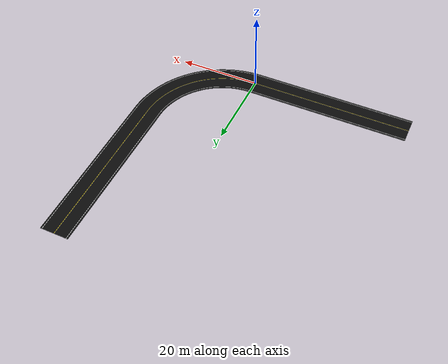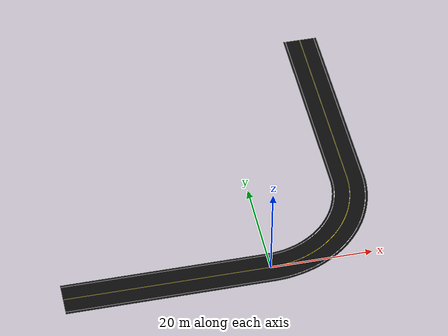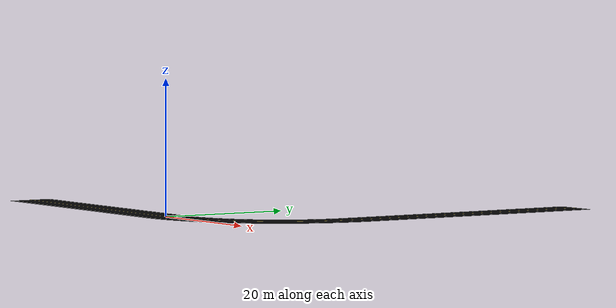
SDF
<?xml version="1.0"?>
<sdf version="1.6">
  <model name="curved_road">
    <static>true</static>

    <link name="road_link">

      <visual name="road_visual">
        <geometry>
          <mesh>
            <uri>model://curved_road/meshes/road.obj</uri>
          </mesh>
        </geometry>
        <material>
          <ambient>0.025 0.025 0.025 1</ambient>
          <diffuse>0.035 0.035 0.035 1</diffuse>
          <specular>0.01 0.01 0.01 1</specular>
        </material>
      </visual>

      <visual name="left_edge_visual">
        <geometry>
          <mesh>
            <uri>model://curved_road/meshes/left_edge.obj</uri>
          </mesh>
        </geometry>
        <material>
          <ambient>1 1 1 1</ambient>
          <diffuse>1 1 1 1</diffuse>
        </material>
      </visual>

      <visual name="right_edge_visual">
        <geometry>
          <mesh>
            <uri>model://curved_road/meshes/right_edge.obj</uri>
          </mesh>
        </geometry>
        <material>
          <ambient>1 1 1 1</ambient>
          <diffuse>1 1 1 1</diffuse>
        </material>
      </visual>

      <visual name="centerline_visual">
        <geometry>
          <mesh>
            <uri>model://curved_road/meshes/centerline.obj</uri>
          </mesh>
        </geometry>
        <material>
          <ambient>1 0.85 0.05 1</ambient>
          <diffuse>1 0.85 0.05 1</diffuse>
        </material>
      </visual>

      <!-- Flat collision surface. Use this first. It is cheaper than mesh collision. -->
      <collision name="flat_road_collision">
        <geometry>
          <box>
            <size>100 100 0.02</size>
          </box>
        </geometry>
        <pose>0 20 0 0 0 0</pose>
      </collision>

    </link>
  </model>
</sdf>
